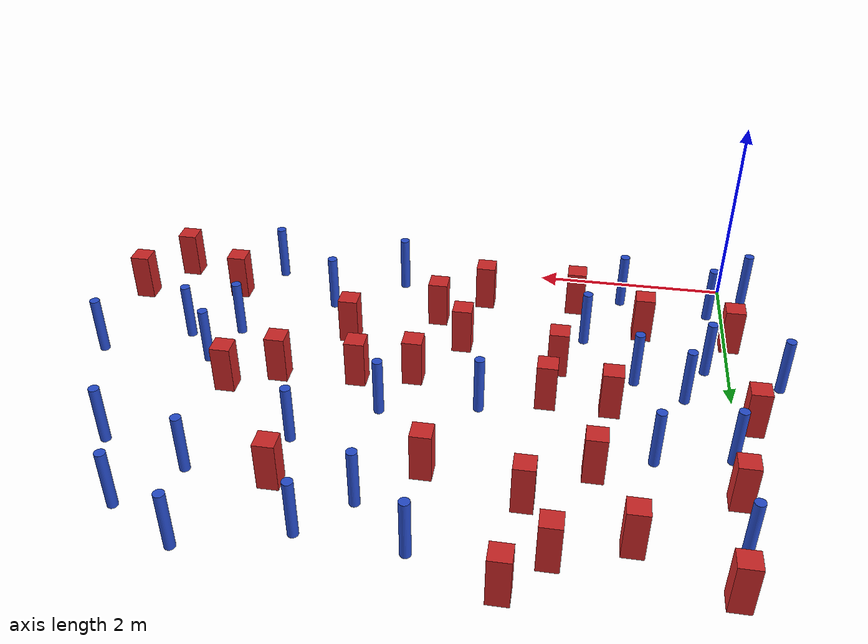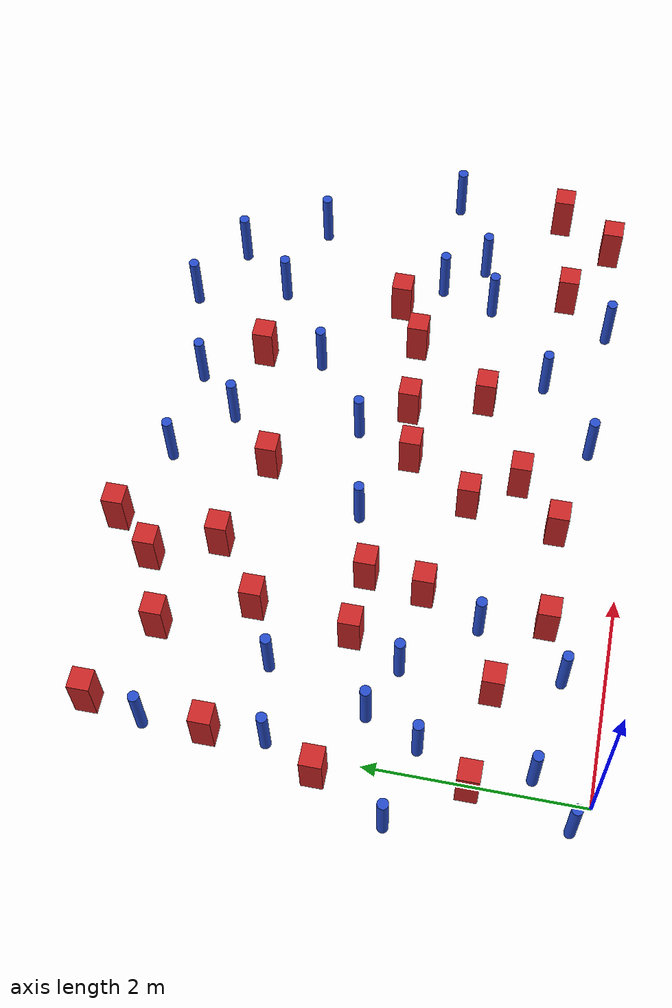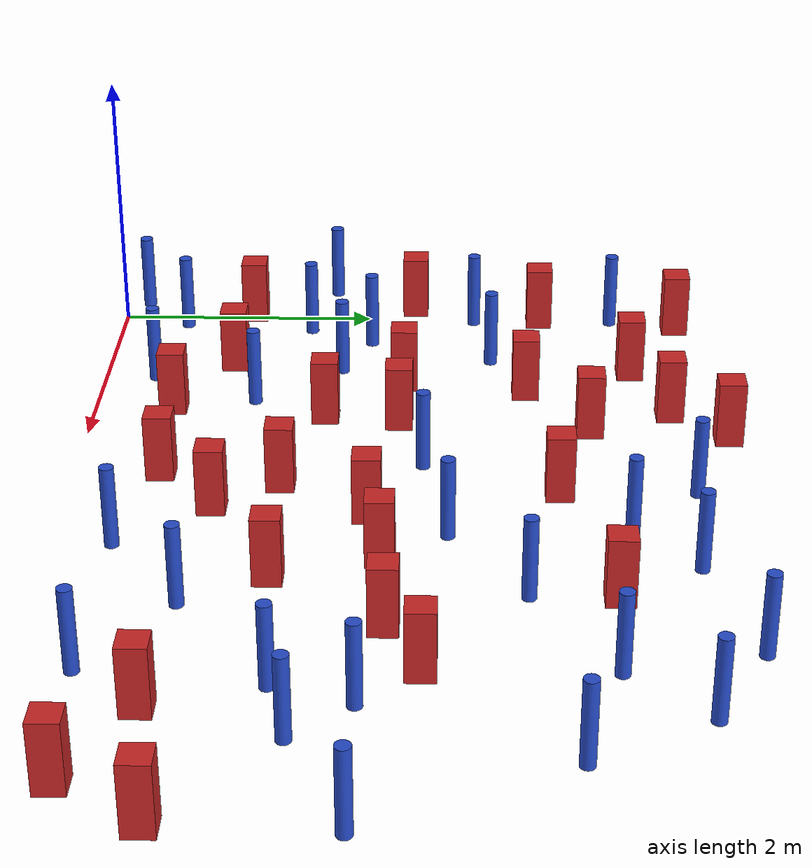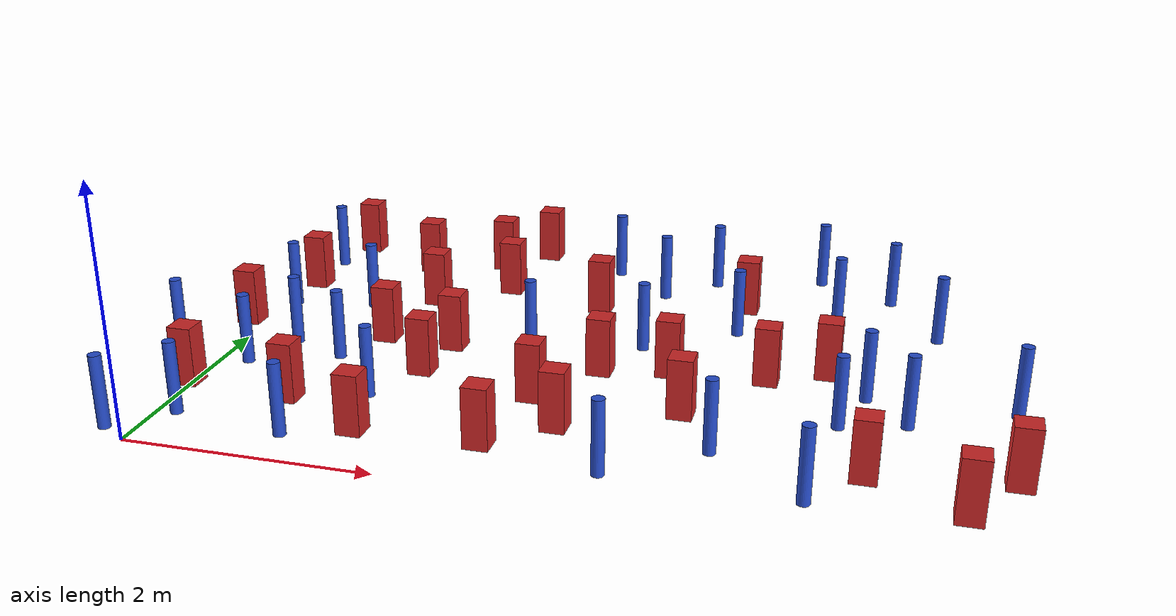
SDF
<sdf version="1.6">
 <model name="dense_62">
  <model name="pole_obstacle0">
   <static>true</static>
   <pose>-0.240299481818 0.152974153635 -9.47619616065e-06 5.49618799737e-07 2.36310414057e-07 -1.55090534801e-07</pose>
   <link name="link">
    <pose>0 0 0.3 0 -0 0</pose>
    <inertial>
     <mass>1</mass>
     <inertia><ixx>0.145833</ixx><ixy>0</ixy><ixz>0</ixz><iyy>0.145833</iyy><iyz>0</iyz><izz>0.125</izz></inertia>
    </inertial>
    <collision name="collision">
     <geometry><cylinder><radius>0.05</radius><length>.6</length></cylinder></geometry>
    </collision>
    <visual name="visual">
     <geometry><cylinder><radius>0.05</radius><length>.6</length></cylinder></geometry>
     <material>
      <script><name>Gazebo/Blue</name><uri>file://media/materials/scripts/gazebo.material</uri></script>
     </material>
    </visual>
   </link>
  </model>
  <model name="pole_obstacle2">
   <static>true</static>
   <pose>-0.487812181251 1.71194919246 -9.47619616065e-06 5.49618799738e-07 2.36310414059e-07 -1.55090534802e-07</pose>
   <link name="link">
    <pose>0 0 0.3 0 -0 0</pose>
    <inertial>
     <mass>1</mass>
     <inertia><ixx>0.145833</ixx><ixy>0</ixy><ixz>0</ixz><iyy>0.145833</iyy><iyz>0</iyz><izz>0.125</izz></inertia>
    </inertial>
    <collision name="collision">
     <geometry><cylinder><radius>0.05</radius><length>.6</length></cylinder></geometry>
    </collision>
    <visual name="visual">
     <geometry><cylinder><radius>0.05</radius><length>.6</length></cylinder></geometry>
     <material>
      <script><name>Gazebo/Blue</name><uri>file://media/materials/scripts/gazebo.material</uri></script>
     </material>
    </visual>
   </link>
  </model>
  <model name="square_post_obstacle4">
   <static>true</static>
   <pose>3.69280537728 2.22293517333 -6.11067671241e-07 -5.50515727128e-06 -8.79689657224e-07 2.37013304536e-05</pose>
   <link name="link">
    <pose>0 0 0.25 0 -0 0</pose>
    <inertial>
     <mass>100</mass>
     <inertia>
      <ixx>0.166667</ixx>
      <ixy>0</ixy>
      <ixz>0</ixz>
      <iyy>0.166667</iyy>
      <iyz>0</iyz>
      <izz>0.166667</izz>
     </inertia>
    </inertial>
    <collision name="collision"><geometry><box><size>.2 .2 .5</size></box></geometry></collision>
    <visual name="visual">
     <geometry><box><size>.2 .2 .5</size></box></geometry>
     <material>
      <script><name>Gazebo/Red</name><uri>file://media/materials/scripts/gazebo.material</uri></script>
     </material>
    </visual>
   </link>
  </model>
  <model name="pole_obstacle8">
   <static>true</static>
   <pose>0.767769919635 2.98122470118 -9.47619616065e-06 5.49618799737e-07 2.36310414066e-07 -1.55090534797e-07</pose>
   <link name="link">
    <pose>0 0 0.3 0 -0 0</pose>
    <inertial>
     <mass>1</mass>
     <inertia><ixx>0.145833</ixx><ixy>0</ixy><ixz>0</ixz><iyy>0.145833</iyy><iyz>0</iyz><izz>0.125</izz></inertia>
    </inertial>
    <collision name="collision">
     <geometry><cylinder><radius>0.05</radius><length>.6</length></cylinder></geometry>
    </collision>
    <visual name="visual">
     <geometry><cylinder><radius>0.05</radius><length>.6</length></cylinder></geometry>
     <material>
      <script><name>Gazebo/Blue</name><uri>file://media/materials/scripts/gazebo.material</uri></script>
     </material>
    </visual>
   </link>
  </model>
  <model name="square_post_obstacle7">
   <static>true</static>
   <pose>3.92760608452 1.5035485975 -6.11067671241e-07 -5.50515727128e-06 -8.79689657224e-07 2.37013304536e-05</pose>
   <link name="link">
    <pose>0 0 0.25 0 -0 0</pose>
    <inertial>
     <mass>100</mass>
     <inertia>
      <ixx>0.166667</ixx>
      <ixy>0</ixy>
      <ixz>0</ixz>
      <iyy>0.166667</iyy>
      <iyz>0</iyz>
      <izz>0.166667</izz>
     </inertia>
    </inertial>
    <collision name="collision"><geometry><box><size>.2 .2 .5</size></box></geometry></collision>
    <visual name="visual">
     <geometry><box><size>.2 .2 .5</size></box></geometry>
     <material>
      <script><name>Gazebo/Red</name><uri>file://media/materials/scripts/gazebo.material</uri></script>
     </material>
    </visual>
   </link>
  </model>
  <model name="pole_obstacle19">
   <static>true</static>
   <pose>4.24416532773 0.94798718305 -9.47619616065e-06 5.49618799737e-07 2.36310414061e-07 -1.550905348e-07</pose>
   <link name="link">
    <pose>0 0 0.3 0 -0 0</pose>
    <inertial>
     <mass>1</mass>
     <inertia><ixx>0.145833</ixx><ixy>0</ixy><ixz>0</ixz><iyy>0.145833</iyy><iyz>0</iyz><izz>0.125</izz></inertia>
    </inertial>
    <collision name="collision">
     <geometry><cylinder><radius>0.05</radius><length>.6</length></cylinder></geometry>
    </collision>
    <visual name="visual">
     <geometry><cylinder><radius>0.05</radius><length>.6</length></cylinder></geometry>
     <material>
      <script><name>Gazebo/Blue</name><uri>file://media/materials/scripts/gazebo.material</uri></script>
     </material>
    </visual>
   </link>
  </model>
  <model name="square_post_obstacle28">
   <static>true</static>
   <pose>1.8963243854 3.69895529939 -6.11067671241e-07 -5.50515727128e-06 -8.79689657224e-07 2.37013304536e-05</pose>
   <link name="link">
    <pose>0 0 0.25 0 -0 0</pose>
    <inertial>
     <mass>100</mass>
     <inertia>
      <ixx>0.166667</ixx>
      <ixy>0</ixy>
      <ixz>0</ixz>
      <iyy>0.166667</iyy>
      <iyz>0</iyz>
      <izz>0.166667</izz>
     </inertia>
    </inertial>
    <collision name="collision"><geometry><box><size>.2 .2 .5</size></box></geometry></collision>
    <visual name="visual">
     <geometry><box><size>.2 .2 .5</size></box></geometry>
     <material>
      <script><name>Gazebo/Red</name><uri>file://media/materials/scripts/gazebo.material</uri></script>
     </material>
    </visual>
   </link>
  </model>
  <model name="pole_obstacle33">
   <static>true</static>
   <pose>6.4372163077 2.13845733889 -9.47619616065e-06 5.49618799738e-07 2.36310414051e-07 -1.55090534805e-07</pose>
   <link name="link">
    <pose>0 0 0.3 0 -0 0</pose>
    <inertial>
     <mass>1</mass>
     <inertia><ixx>0.145833</ixx><ixy>0</ixy><ixz>0</ixz><iyy>0.145833</iyy><iyz>0</iyz><izz>0.125</izz></inertia>
    </inertial>
    <collision name="collision">
     <geometry><cylinder><radius>0.05</radius><length>.6</length></cylinder></geometry>
    </collision>
    <visual name="visual">
     <geometry><cylinder><radius>0.05</radius><length>.6</length></cylinder></geometry>
     <material>
      <script><name>Gazebo/Blue</name><uri>file://media/materials/scripts/gazebo.material</uri></script>
     </material>
    </visual>
   </link>
  </model>
  <model name="square_post_obstacle30">
   <static>true</static>
   <pose>-0.0360969323806 1.05991731777 -6.11067671241e-07 -5.50515727128e-06 -8.79689657224e-07 2.37013304536e-05</pose>
   <link name="link">
    <pose>0 0 0.25 0 -0 0</pose>
    <inertial>
     <mass>100</mass>
     <inertia>
      <ixx>0.166667</ixx>
      <ixy>0</ixy>
      <ixz>0</ixz>
      <iyy>0.166667</iyy>
      <iyz>0</iyz>
      <izz>0.166667</izz>
     </inertia>
    </inertial>
    <collision name="collision"><geometry><box><size>.2 .2 .5</size></box></geometry></collision>
    <visual name="visual">
     <geometry><box><size>.2 .2 .5</size></box></geometry>
     <material>
      <script><name>Gazebo/Red</name><uri>file://media/materials/scripts/gazebo.material</uri></script>
     </material>
    </visual>
   </link>
  </model>
  <model name="pole_obstacle41">
   <static>true</static>
   <pose>4.71669889044 4.6376784754 -9.47619616065e-06 5.49618799737e-07 2.36310414037e-07 -1.55090534814e-07</pose>
   <link name="link">
    <pose>0 0 0.3 0 -0 0</pose>
    <inertial>
     <mass>1</mass>
     <inertia><ixx>0.145833</ixx><ixy>0</ixy><ixz>0</ixz><iyy>0.145833</iyy><iyz>0</iyz><izz>0.125</izz></inertia>
    </inertial>
    <collision name="collision">
     <geometry><cylinder><radius>0.05</radius><length>.6</length></cylinder></geometry>
    </collision>
    <visual name="visual">
     <geometry><cylinder><radius>0.05</radius><length>.6</length></cylinder></geometry>
     <material>
      <script><name>Gazebo/Blue</name><uri>file://media/materials/scripts/gazebo.material</uri></script>
     </material>
    </visual>
   </link>
  </model>
  <model name="square_post_obstacle34">
   <static>true</static>
   <pose>4.4838422357 2.2754608265 -6.11067671241e-07 -5.50515727128e-06 -8.79689657224e-07 2.37013304536e-05</pose>
   <link name="link">
    <pose>0 0 0.25 0 -0 0</pose>
    <inertial>
     <mass>100</mass>
     <inertia>
      <ixx>0.166667</ixx>
      <ixy>0</ixy>
      <ixz>0</ixz>
      <iyy>0.166667</iyy>
      <iyz>0</iyz>
      <izz>0.166667</izz>
     </inertia>
    </inertial>
    <collision name="collision"><geometry><box><size>.2 .2 .5</size></box></geometry></collision>
    <visual name="visual">
     <geometry><box><size>.2 .2 .5</size></box></geometry>
     <material>
      <script><name>Gazebo/Red</name><uri>file://media/materials/scripts/gazebo.material</uri></script>
     </material>
    </visual>
   </link>
  </model>
  <model name="pole_obstacle54">
   <static>true</static>
   <pose>5.38299766523 4.27145445951 -9.47619616065e-06 5.49618799737e-07 2.36310414037e-07 -1.55090534814e-07</pose>
   <link name="link">
    <pose>0 0 0.3 0 -0 0</pose>
    <inertial>
     <mass>1</mass>
     <inertia><ixx>0.145833</ixx><ixy>0</ixy><ixz>0</ixz><iyy>0.145833</iyy><iyz>0</iyz><izz>0.125</izz></inertia>
    </inertial>
    <collision name="collision">
     <geometry><cylinder><radius>0.05</radius><length>.6</length></cylinder></geometry>
    </collision>
    <visual name="visual">
     <geometry><cylinder><radius>0.05</radius><length>.6</length></cylinder></geometry>
     <material>
      <script><name>Gazebo/Blue</name><uri>file://media/materials/scripts/gazebo.material</uri></script>
     </material>
    </visual>
   </link>
  </model>
  <model name="square_post_obstacle42">
   <static>true</static>
   <pose>5.35175985893 0.859702242801 -6.11067671241e-07 -5.50515727128e-06 -8.79689657224e-07 2.37013304536e-05</pose>
   <link name="link">
    <pose>0 0 0.25 0 -0 0</pose>
    <inertial>
     <mass>100</mass>
     <inertia>
      <ixx>0.166667</ixx>
      <ixy>0</ixy>
      <ixz>0</ixz>
      <iyy>0.166667</iyy>
      <iyz>0</iyz>
      <izz>0.166667</izz>
     </inertia>
    </inertial>
    <collision name="collision"><geometry><box><size>.2 .2 .5</size></box></geometry></collision>
    <visual name="visual">
     <geometry><box><size>.2 .2 .5</size></box></geometry>
     <material>
      <script><name>Gazebo/Red</name><uri>file://media/materials/scripts/gazebo.material</uri></script>
     </material>
    </visual>
   </link>
  </model>
  <model name="square_post_obstacle44">
   <static>true</static>
   <pose>2.81730123864 3.44265855016 -6.11067671241e-07 -5.50515727128e-06 -8.79689657224e-07 2.37013304536e-05</pose>
   <link name="link">
    <pose>0 0 0.25 0 -0 0</pose>
    <inertial>
     <mass>100</mass>
     <inertia>
      <ixx>0.166667</ixx>
      <ixy>0</ixy>
      <ixz>0</ixz>
      <iyy>0.166667</iyy>
      <iyz>0</iyz>
      <izz>0.166667</izz>
     </inertia>
    </inertial>
    <collision name="collision"><geometry><box><size>.2 .2 .5</size></box></geometry></collision>
    <visual name="visual">
     <geometry><box><size>.2 .2 .5</size></box></geometry>
     <material>
      <script><name>Gazebo/Red</name><uri>file://media/materials/scripts/gazebo.material</uri></script>
     </material>
    </visual>
   </link>
  </model>
  <model name="square_post_obstacle45">
   <static>true</static>
   <pose>1.99190865364 4.70756909443 -6.11067671241e-07 -5.50515727128e-06 -8.79689657224e-07 2.37013304536e-05</pose>
   <link name="link">
    <pose>0 0 0.25 0 -0 0</pose>
    <inertial>
     <mass>100</mass>
     <inertia>
      <ixx>0.166667</ixx>
      <ixy>0</ixy>
      <ixz>0</ixz>
      <iyy>0.166667</iyy>
      <iyz>0</iyz>
      <izz>0.166667</izz>
     </inertia>
    </inertial>
    <collision name="collision"><geometry><box><size>.2 .2 .5</size></box></geometry></collision>
    <visual name="visual">
     <geometry><box><size>.2 .2 .5</size></box></geometry>
     <material>
      <script><name>Gazebo/Red</name><uri>file://media/materials/scripts/gazebo.material</uri></script>
     </material>
    </visual>
   </link>
  </model>
  <model name="pole_obstacle62">
   <static>true</static>
   <pose>3.32741732016 3.91408078744 -9.47619616065e-06 5.49618799737e-07 2.36310414051e-07 -1.55090534807e-07</pose>
   <link name="link">
    <pose>0 0 0.3 0 -0 0</pose>
    <inertial>
     <mass>1</mass>
     <inertia><ixx>0.145833</ixx><ixy>0</ixy><ixz>0</ixz><iyy>0.145833</iyy><iyz>0</iyz><izz>0.125</izz></inertia>
    </inertial>
    <collision name="collision">
     <geometry><cylinder><radius>0.05</radius><length>.6</length></cylinder></geometry>
    </collision>
    <visual name="visual">
     <geometry><cylinder><radius>0.05</radius><length>.6</length></cylinder></geometry>
     <material>
      <script><name>Gazebo/Blue</name><uri>file://media/materials/scripts/gazebo.material</uri></script>
     </material>
    </visual>
   </link>
  </model>
  <model name="square_post_obstacle56">
   <static>true</static>
   <pose>3.05071177633 1.03974126625 -6.11067671241e-07 -5.50515727128e-06 -8.79689657224e-07 2.37013304536e-05</pose>
   <link name="link">
    <pose>0 0 0.25 0 -0 0</pose>
    <inertial>
     <mass>100</mass>
     <inertia>
      <ixx>0.166667</ixx>
      <ixy>0</ixy>
      <ixz>0</ixz>
      <iyy>0.166667</iyy>
      <iyz>0</iyz>
      <izz>0.166667</izz>
     </inertia>
    </inertial>
    <collision name="collision"><geometry><box><size>.2 .2 .5</size></box></geometry></collision>
    <visual name="visual">
     <geometry><box><size>.2 .2 .5</size></box></geometry>
     <material>
      <script><name>Gazebo/Red</name><uri>file://media/materials/scripts/gazebo.material</uri></script>
     </material>
    </visual>
   </link>
  </model>
  <model name="pole_obstacle71">
   <static>true</static>
   <pose>4.11179403503 3.19697628768 -9.47619616065e-06 5.49618799738e-07 2.36310414051e-07 -1.55090534805e-07</pose>
   <link name="link">
    <pose>0 0 0.3 0 -0 0</pose>
    <inertial>
     <mass>1</mass>
     <inertia><ixx>0.145833</ixx><ixy>0</ixy><ixz>0</ixz><iyy>0.145833</iyy><iyz>0</iyz><izz>0.125</izz></inertia>
    </inertial>
    <collision name="collision">
     <geometry><cylinder><radius>0.05</radius><length>.6</length></cylinder></geometry>
    </collision>
    <visual name="visual">
     <geometry><cylinder><radius>0.05</radius><length>.6</length></cylinder></geometry>
     <material>
      <script><name>Gazebo/Blue</name><uri>file://media/materials/scripts/gazebo.material</uri></script>
     </material>
    </visual>
   </link>
  </model>
  <model name="square_post_obstacle67">
   <static>true</static>
   <pose>6.40763302864 1.03324362311 -6.11067671241e-07 -5.50515727128e-06 -8.79689657224e-07 2.37013304536e-05</pose>
   <link name="link">
    <pose>0 0 0.25 0 -0 0</pose>
    <inertial>
     <mass>100</mass>
     <inertia>
      <ixx>0.166667</ixx>
      <ixy>0</ixy>
      <ixz>0</ixz>
      <iyy>0.166667</iyy>
      <iyz>0</iyz>
      <izz>0.166667</izz>
     </inertia>
    </inertial>
    <collision name="collision"><geometry><box><size>.2 .2 .5</size></box></geometry></collision>
    <visual name="visual">
     <geometry><box><size>.2 .2 .5</size></box></geometry>
     <material>
      <script><name>Gazebo/Red</name><uri>file://media/materials/scripts/gazebo.material</uri></script>
     </material>
    </visual>
   </link>
  </model>
  <model name="pole_obstacle86">
   <static>true</static>
   <pose>5.81162590875 3.48142350158 -9.47619616065e-06 5.49618799738e-07 2.36310414051e-07 -1.55090534805e-07</pose>
   <link name="link">
    <pose>0 0 0.3 0 -0 0</pose>
    <inertial>
     <mass>1</mass>
     <inertia><ixx>0.145833</ixx><ixy>0</ixy><ixz>0</ixz><iyy>0.145833</iyy><iyz>0</iyz><izz>0.125</izz></inertia>
    </inertial>
    <collision name="collision">
     <geometry><cylinder><radius>0.05</radius><length>.6</length></cylinder></geometry>
    </collision>
    <visual name="visual">
     <geometry><cylinder><radius>0.05</radius><length>.6</length></cylinder></geometry>
     <material>
      <script><name>Gazebo/Blue</name><uri>file://media/materials/scripts/gazebo.material</uri></script>
     </material>
    </visual>
   </link>
  </model>
  <model name="pole_obstacle87">
   <static>true</static>
   <pose>4.98019573924 0.405692615105 -9.47619616065e-06 5.49618799737e-07 2.36310414057e-07 -1.55090534802e-07</pose>
   <link name="link">
    <pose>0 0 0.3 0 -0 0</pose>
    <inertial>
     <mass>1</mass>
     <inertia><ixx>0.145833</ixx><ixy>0</ixy><ixz>0</ixz><iyy>0.145833</iyy><iyz>0</iyz><izz>0.125</izz></inertia>
    </inertial>
    <collision name="collision">
     <geometry><cylinder><radius>0.05</radius><length>.6</length></cylinder></geometry>
    </collision>
    <visual name="visual">
     <geometry><cylinder><radius>0.05</radius><length>.6</length></cylinder></geometry>
     <material>
      <script><name>Gazebo/Blue</name><uri>file://media/materials/scripts/gazebo.material</uri></script>
     </material>
    </visual>
   </link>
  </model>
  <model name="pole_obstacle88">
   <static>true</static>
   <pose>0.0551312334051 2.8501928194 -9.4761961606e-06 5.49618799729e-07 2.36310413998e-07 -1.55090534825e-07</pose>
   <link name="link">
    <pose>0 0 0.3 0 -0 0</pose>
    <inertial>
     <mass>1</mass>
     <inertia><ixx>0.145833</ixx><ixy>0</ixy><ixz>0</ixz><iyy>0.145833</iyy><iyz>0</iyz><izz>0.125</izz></inertia>
    </inertial>
    <collision name="collision">
     <geometry><cylinder><radius>0.05</radius><length>.6</length></cylinder></geometry>
    </collision>
    <visual name="visual">
     <geometry><cylinder><radius>0.05</radius><length>.6</length></cylinder></geometry>
     <material>
      <script><name>Gazebo/Blue</name><uri>file://media/materials/scripts/gazebo.material</uri></script>
     </material>
    </visual>
   </link>
  </model>
  <model name="square_post_obstacle81">
   <static>true</static>
   <pose>1.180690042 2.31409241837 -6.11067671241e-07 -5.50515727128e-06 -8.79689657224e-07 2.37013304536e-05</pose>
   <link name="link">
    <pose>0 0 0.25 0 -0 0</pose>
    <inertial>
     <mass>100</mass>
     <inertia>
      <ixx>0.166667</ixx>
      <ixy>0</ixy>
      <ixz>0</ixz>
      <iyy>0.166667</iyy>
      <iyz>0</iyz>
      <izz>0.166667</izz>
     </inertia>
    </inertial>
    <collision name="collision"><geometry><box><size>.2 .2 .5</size></box></geometry></collision>
    <visual name="visual">
     <geometry><box><size>.2 .2 .5</size></box></geometry>
     <material>
      <script><name>Gazebo/Red</name><uri>file://media/materials/scripts/gazebo.material</uri></script>
     </material>
    </visual>
   </link>
  </model>
  <model name="pole_obstacle93">
   <static>true</static>
   <pose>3.53884156486 0.422860158452 -9.47619616065e-06 5.49618799738e-07 2.36310414074e-07 -1.55090534794e-07</pose>
   <link name="link">
    <pose>0 0 0.3 0 -0 0</pose>
    <inertial>
     <mass>1</mass>
     <inertia><ixx>0.145833</ixx><ixy>0</ixy><ixz>0</ixz><iyy>0.145833</iyy><iyz>0</iyz><izz>0.125</izz></inertia>
    </inertial>
    <collision name="collision">
     <geometry><cylinder><radius>0.05</radius><length>.6</length></cylinder></geometry>
    </collision>
    <visual name="visual">
     <geometry><cylinder><radius>0.05</radius><length>.6</length></cylinder></geometry>
     <material>
      <script><name>Gazebo/Blue</name><uri>file://media/materials/scripts/gazebo.material</uri></script>
     </material>
    </visual>
   </link>
  </model>
  <model name="pole_obstacle96">
   <static>true</static>
   <pose>5.11314997426 1.60261455648 -9.47619616065e-06 5.49618799738e-07 2.36310414071e-07 -1.55090534796e-07</pose>
   <link name="link">
    <pose>0 0 0.3 0 -0 0</pose>
    <inertial>
     <mass>1</mass>
     <inertia><ixx>0.145833</ixx><ixy>0</ixy><ixz>0</ixz><iyy>0.145833</iyy><iyz>0</iyz><izz>0.125</izz></inertia>
    </inertial>
    <collision name="collision">
     <geometry><cylinder><radius>0.05</radius><length>.6</length></cylinder></geometry>
    </collision>
    <visual name="visual">
     <geometry><cylinder><radius>0.05</radius><length>.6</length></cylinder></geometry>
     <material>
      <script><name>Gazebo/Blue</name><uri>file://media/materials/scripts/gazebo.material</uri></script>
     </material>
    </visual>
   </link>
  </model>
  <model name="pole_obstacle101">
   <static>true</static>
   <pose>0.0374332358474 3.95878103369 -9.47619616065e-06 5.49618799737e-07 2.36310414066e-07 -1.55090534796e-07</pose>
   <link name="link">
    <pose>0 0 0.3 0 -0 0</pose>
    <inertial>
     <mass>1</mass>
     <inertia><ixx>0.145833</ixx><ixy>0</ixy><ixz>0</ixz><iyy>0.145833</iyy><iyz>0</iyz><izz>0.125</izz></inertia>
    </inertial>
    <collision name="collision">
     <geometry><cylinder><radius>0.05</radius><length>.6</length></cylinder></geometry>
    </collision>
    <visual name="visual">
     <geometry><cylinder><radius>0.05</radius><length>.6</length></cylinder></geometry>
     <material>
      <script><name>Gazebo/Blue</name><uri>file://media/materials/scripts/gazebo.material</uri></script>
     </material>
    </visual>
   </link>
  </model>
  <model name="square_post_obstacle105">
   <static>true</static>
   <pose>1.30832829084 3.23836102406 -6.11067671241e-07 -5.50515727128e-06 -8.79689657224e-07 2.37013304536e-05</pose>
   <link name="link">
    <pose>0 0 0.25 0 -0 0</pose>
    <inertial>
     <mass>100</mass>
     <inertia>
      <ixx>0.166667</ixx>
      <ixy>0</ixy>
      <ixz>0</ixz>
      <iyy>0.166667</iyy>
      <iyz>0</iyz>
      <izz>0.166667</izz>
     </inertia>
    </inertial>
    <collision name="collision"><geometry><box><size>.2 .2 .5</size></box></geometry></collision>
    <visual name="visual">
     <geometry><box><size>.2 .2 .5</size></box></geometry>
     <material>
      <script><name>Gazebo/Red</name><uri>file://media/materials/scripts/gazebo.material</uri></script>
     </material>
    </visual>
   </link>
  </model>
  <model name="pole_obstacle111">
   <static>true</static>
   <pose>3.37869174754 2.66776359021 -9.47619616065e-06 5.49618799737e-07 2.36310414051e-07 -1.55090534807e-07</pose>
   <link name="link">
    <pose>0 0 0.3 0 -0 0</pose>
    <inertial>
     <mass>1</mass>
     <inertia><ixx>0.145833</ixx><ixy>0</ixy><ixz>0</ixz><iyy>0.145833</iyy><iyz>0</iyz><izz>0.125</izz></inertia>
    </inertial>
    <collision name="collision">
     <geometry><cylinder><radius>0.05</radius><length>.6</length></cylinder></geometry>
    </collision>
    <visual name="visual">
     <geometry><cylinder><radius>0.05</radius><length>.6</length></cylinder></geometry>
     <material>
      <script><name>Gazebo/Blue</name><uri>file://media/materials/scripts/gazebo.material</uri></script>
     </material>
    </visual>
   </link>
  </model>
  <model name="square_post_obstacle109">
   <static>true</static>
   <pose>0.871969190971 0.984973243615 -6.11067671241e-07 -5.50515727128e-06 -8.79689657224e-07 2.37013304536e-05</pose>
   <link name="link">
    <pose>0 0 0.25 0 -0 0</pose>
    <inertial>
     <mass>100</mass>
     <inertia>
      <ixx>0.166667</ixx>
      <ixy>0</ixy>
      <ixz>0</ixz>
      <iyy>0.166667</iyy>
      <iyz>0</iyz>
      <izz>0.166667</izz>
     </inertia>
    </inertial>
    <collision name="collision"><geometry><box><size>.2 .2 .5</size></box></geometry></collision>
    <visual name="visual">
     <geometry><box><size>.2 .2 .5</size></box></geometry>
     <material>
      <script><name>Gazebo/Red</name><uri>file://media/materials/scripts/gazebo.material</uri></script>
     </material>
    </visual>
   </link>
  </model>
  <model name="square_post_obstacle115">
   <static>true</static>
   <pose>1.63409261064 4.30810418463 -6.11067671241e-07 -5.50515727128e-06 -8.79689657224e-07 2.37013304536e-05</pose>
   <link name="link">
    <pose>0 0 0.25 0 -0 0</pose>
    <inertial>
     <mass>100</mass>
     <inertia>
      <ixx>0.166667</ixx>
      <ixy>0</ixy>
      <ixz>0</ixz>
      <iyy>0.166667</iyy>
      <iyz>0</iyz>
      <izz>0.166667</izz>
     </inertia>
    </inertial>
    <collision name="collision"><geometry><box><size>.2 .2 .5</size></box></geometry></collision>
    <visual name="visual">
     <geometry><box><size>.2 .2 .5</size></box></geometry>
     <material>
      <script><name>Gazebo/Red</name><uri>file://media/materials/scripts/gazebo.material</uri></script>
     </material>
    </visual>
   </link>
  </model>
  <model name="pole_obstacle116">
   <static>true</static>
   <pose>5.622537648 1.7429333963 -9.47619616065e-06 5.49618799738e-07 2.36310414071e-07 -1.55090534796e-07</pose>
   <link name="link">
    <pose>0 0 0.3 0 -0 0</pose>
    <inertial>
     <mass>1</mass>
     <inertia><ixx>0.145833</ixx><ixy>0</ixy><ixz>0</ixz><iyy>0.145833</iyy><iyz>0</iyz><izz>0.125</izz></inertia>
    </inertial>
    <collision name="collision">
     <geometry><cylinder><radius>0.05</radius><length>.6</length></cylinder></geometry>
    </collision>
    <visual name="visual">
     <geometry><cylinder><radius>0.05</radius><length>.6</length></cylinder></geometry>
     <material>
      <script><name>Gazebo/Blue</name><uri>file://media/materials/scripts/gazebo.material</uri></script>
     </material>
    </visual>
   </link>
  </model>
  <model name="pole_obstacle118">
   <static>true</static>
   <pose>0.236821451954 1.54279347426 -9.47619616065e-06 5.49618799737e-07 2.36310414054e-07 -1.55090534804e-07</pose>
   <link name="link">
    <pose>0 0 0.3 0 -0 0</pose>
    <inertial>
     <mass>1</mass>
     <inertia><ixx>0.145833</ixx><ixy>0</ixy><ixz>0</ixz><iyy>0.145833</iyy><iyz>0</iyz><izz>0.125</izz></inertia>
    </inertial>
    <collision name="collision">
     <geometry><cylinder><radius>0.05</radius><length>.6</length></cylinder></geometry>
    </collision>
    <visual name="visual">
     <geometry><cylinder><radius>0.05</radius><length>.6</length></cylinder></geometry>
     <material>
      <script><name>Gazebo/Blue</name><uri>file://media/materials/scripts/gazebo.material</uri></script>
     </material>
    </visual>
   </link>
  </model>
  <model name="square_post_obstacle120">
   <static>true</static>
   <pose>1.59671026568 0.59072320867 -6.11067671241e-07 -5.50515727128e-06 -8.79689657224e-07 2.37013304536e-05</pose>
   <link name="link">
    <pose>0 0 0.25 0 -0 0</pose>
    <inertial>
     <mass>100</mass>
     <inertia>
      <ixx>0.166667</ixx>
      <ixy>0</ixy>
      <ixz>0</ixz>
      <iyy>0.166667</iyy>
      <iyz>0</iyz>
      <izz>0.166667</izz>
     </inertia>
    </inertial>
    <collision name="collision"><geometry><box><size>.2 .2 .5</size></box></geometry></collision>
    <visual name="visual">
     <geometry><box><size>.2 .2 .5</size></box></geometry>
     <material>
      <script><name>Gazebo/Red</name><uri>file://media/materials/scripts/gazebo.material</uri></script>
     </material>
    </visual>
   </link>
  </model>
  <model name="pole_obstacle120">
   <static>true</static>
   <pose>1.09691074855 0.386702304819 -9.47619616065e-06 5.49618799737e-07 2.36310414064e-07 -1.55090534799e-07</pose>
   <link name="link">
    <pose>0 0 0.3 0 -0 0</pose>
    <inertial>
     <mass>1</mass>
     <inertia><ixx>0.145833</ixx><ixy>0</ixy><ixz>0</ixz><iyy>0.145833</iyy><iyz>0</iyz><izz>0.125</izz></inertia>
    </inertial>
    <collision name="collision">
     <geometry><cylinder><radius>0.05</radius><length>.6</length></cylinder></geometry>
    </collision>
    <visual name="visual">
     <geometry><cylinder><radius>0.05</radius><length>.6</length></cylinder></geometry>
     <material>
      <script><name>Gazebo/Blue</name><uri>file://media/materials/scripts/gazebo.material</uri></script>
     </material>
    </visual>
   </link>
  </model>
  <model name="pole_obstacle122">
   <static>true</static>
   <pose>0.943366641053 1.8291367113 -9.47619616065e-06 5.49618799738e-07 2.36310414061e-07 -1.55090534801e-07</pose>
   <link name="link">
    <pose>0 0 0.3 0 -0 0</pose>
    <inertial>
     <mass>1</mass>
     <inertia><ixx>0.145833</ixx><ixy>0</ixy><ixz>0</ixz><iyy>0.145833</iyy><iyz>0</iyz><izz>0.125</izz></inertia>
    </inertial>
    <collision name="collision">
     <geometry><cylinder><radius>0.05</radius><length>.6</length></cylinder></geometry>
    </collision>
    <visual name="visual">
     <geometry><cylinder><radius>0.05</radius><length>.6</length></cylinder></geometry>
     <material>
      <script><name>Gazebo/Blue</name><uri>file://media/materials/scripts/gazebo.material</uri></script>
     </material>
    </visual>
   </link>
  </model>
  <model name="pole_obstacle124">
   <static>true</static>
   <pose>2.43304529755 2.48319438129 -9.47619616065e-06 5.49618799737e-07 2.36310414051e-07 -1.55090534807e-07</pose>
   <link name="link">
    <pose>0 0 0.3 0 -0 0</pose>
    <inertial>
     <mass>1</mass>
     <inertia><ixx>0.145833</ixx><ixy>0</ixy><ixz>0</ixz><iyy>0.145833</iyy><iyz>0</iyz><izz>0.125</izz></inertia>
    </inertial>
    <collision name="collision">
     <geometry><cylinder><radius>0.05</radius><length>.6</length></cylinder></geometry>
    </collision>
    <visual name="visual">
     <geometry><cylinder><radius>0.05</radius><length>.6</length></cylinder></geometry>
     <material>
      <script><name>Gazebo/Blue</name><uri>file://media/materials/scripts/gazebo.material</uri></script>
     </material>
    </visual>
   </link>
  </model>
  <model name="pole_obstacle148">
   <static>true</static>
   <pose>0.155302557805 0.52348102198 -9.47619616065e-06 5.49618799737e-07 2.36310414054e-07 -1.55090534803e-07</pose>
   <link name="link">
    <pose>0 0 0.3 0 -0 0</pose>
    <inertial>
     <mass>1</mass>
     <inertia><ixx>0.145833</ixx><ixy>0</ixy><ixz>0</ixz><iyy>0.145833</iyy><iyz>0</iyz><izz>0.125</izz></inertia>
    </inertial>
    <collision name="collision">
     <geometry><cylinder><radius>0.05</radius><length>.6</length></cylinder></geometry>
    </collision>
    <visual name="visual">
     <geometry><cylinder><radius>0.05</radius><length>.6</length></cylinder></geometry>
     <material>
      <script><name>Gazebo/Blue</name><uri>file://media/materials/scripts/gazebo.material</uri></script>
     </material>
    </visual>
   </link>
  </model>
  <model name="square_post_obstacle144">
   <static>true</static>
   <pose>2.58615659373 0.62790057353 -6.11067671241e-07 -5.50515727128e-06 -8.79689657224e-07 2.37013304536e-05</pose>
   <link name="link">
    <pose>0 0 0.25 0 -0 0</pose>
    <inertial>
     <mass>100</mass>
     <inertia>
      <ixx>0.166667</ixx>
      <ixy>0</ixy>
      <ixz>0</ixz>
      <iyy>0.166667</iyy>
      <iyz>0</iyz>
      <izz>0.166667</izz>
     </inertia>
    </inertial>
    <collision name="collision"><geometry><box><size>.2 .2 .5</size></box></geometry></collision>
    <visual name="visual">
     <geometry><box><size>.2 .2 .5</size></box></geometry>
     <material>
      <script><name>Gazebo/Red</name><uri>file://media/materials/scripts/gazebo.material</uri></script>
     </material>
    </visual>
   </link>
  </model>
  <model name="square_post_obstacle150">
   <static>true</static>
   <pose>4.95565555831 2.51809444745 -6.11067671241e-07 -5.50515727128e-06 -8.79689657224e-07 2.37013304536e-05</pose>
   <link name="link">
    <pose>0 0 0.25 0 -0 0</pose>
    <inertial>
     <mass>100</mass>
     <inertia>
      <ixx>0.166667</ixx>
      <ixy>0</ixy>
      <ixz>0</ixz>
      <iyy>0.166667</iyy>
      <iyz>0</iyz>
      <izz>0.166667</izz>
     </inertia>
    </inertial>
    <collision name="collision"><geometry><box><size>.2 .2 .5</size></box></geometry></collision>
    <visual name="visual">
     <geometry><box><size>.2 .2 .5</size></box></geometry>
     <material>
      <script><name>Gazebo/Red</name><uri>file://media/materials/scripts/gazebo.material</uri></script>
     </material>
    </visual>
   </link>
  </model>
  <model name="pole_obstacle155">
   <static>true</static>
   <pose>3.75396969724 4.34154133363 -9.47619616065e-06 5.49618799738e-07 2.3631041406e-07 -1.55090534801e-07</pose>
   <link name="link">
    <pose>0 0 0.3 0 -0 0</pose>
    <inertial>
     <mass>1</mass>
     <inertia><ixx>0.145833</ixx><ixy>0</ixy><ixz>0</ixz><iyy>0.145833</iyy><iyz>0</iyz><izz>0.125</izz></inertia>
    </inertial>
    <collision name="collision">
     <geometry><cylinder><radius>0.05</radius><length>.6</length></cylinder></geometry>
    </collision>
    <visual name="visual">
     <geometry><cylinder><radius>0.05</radius><length>.6</length></cylinder></geometry>
     <material>
      <script><name>Gazebo/Blue</name><uri>file://media/materials/scripts/gazebo.material</uri></script>
     </material>
    </visual>
   </link>
  </model>
  <model name="pole_obstacle156">
   <static>true</static>
   <pose>2.78645025342 4.40657249441 -9.47619616065e-06 5.49618799738e-07 2.3631041406e-07 -1.55090534801e-07</pose>
   <link name="link">
    <pose>0 0 0.3 0 -0 0</pose>
    <inertial>
     <mass>1</mass>
     <inertia><ixx>0.145833</ixx><ixy>0</ixy><ixz>0</ixz><iyy>0.145833</iyy><iyz>0</iyz><izz>0.125</izz></inertia>
    </inertial>
    <collision name="collision">
     <geometry><cylinder><radius>0.05</radius><length>.6</length></cylinder></geometry>
    </collision>
    <visual name="visual">
     <geometry><cylinder><radius>0.05</radius><length>.6</length></cylinder></geometry>
     <material>
      <script><name>Gazebo/Blue</name><uri>file://media/materials/scripts/gazebo.material</uri></script>
     </material>
    </visual>
   </link>
  </model>
  <model name="pole_obstacle163">
   <static>true</static>
   <pose>1.47115402093 1.19374681263 -9.47619616065e-06 5.49618799737e-07 2.36310414065e-07 -1.55090534798e-07</pose>
   <link name="link">
    <pose>0 0 0.3 0 -0 0</pose>
    <inertial>
     <mass>1</mass>
     <inertia><ixx>0.145833</ixx><ixy>0</ixy><ixz>0</ixz><iyy>0.145833</iyy><iyz>0</iyz><izz>0.125</izz></inertia>
    </inertial>
    <collision name="collision">
     <geometry><cylinder><radius>0.05</radius><length>.6</length></cylinder></geometry>
    </collision>
    <visual name="visual">
     <geometry><cylinder><radius>0.05</radius><length>.6</length></cylinder></geometry>
     <material>
      <script><name>Gazebo/Blue</name><uri>file://media/materials/scripts/gazebo.material</uri></script>
     </material>
    </visual>
   </link>
  </model>
  <model name="square_post_obstacle158">
   <static>true</static>
   <pose>0.0446554983195 3.37871515555 -6.11067671241e-07 -5.50515727128e-06 -8.79689657224e-07 2.37013304536e-05</pose>
   <link name="link">
    <pose>0 0 0.25 0 -0 0</pose>
    <inertial>
     <mass>100</mass>
     <inertia>
      <ixx>0.166667</ixx>
      <ixy>0</ixy>
      <ixz>0</ixz>
      <iyy>0.166667</iyy>
      <iyz>0</iyz>
      <izz>0.166667</izz>
     </inertia>
    </inertial>
    <collision name="collision"><geometry><box><size>.2 .2 .5</size></box></geometry></collision>
    <visual name="visual">
     <geometry><box><size>.2 .2 .5</size></box></geometry>
     <material>
      <script><name>Gazebo/Red</name><uri>file://media/materials/scripts/gazebo.material</uri></script>
     </material>
    </visual>
   </link>
  </model>
  <model name="pole_obstacle166">
   <static>true</static>
   <pose>5.28716187503 2.13662970273 -9.47619616065e-06 5.49618799738e-07 2.36310414051e-07 -1.55090534805e-07</pose>
   <link name="link">
    <pose>0 0 0.3 0 -0 0</pose>
    <inertial>
     <mass>1</mass>
     <inertia><ixx>0.145833</ixx><ixy>0</ixy><ixz>0</ixz><iyy>0.145833</iyy><iyz>0</iyz><izz>0.125</izz></inertia>
    </inertial>
    <collision name="collision">
     <geometry><cylinder><radius>0.05</radius><length>.6</length></cylinder></geometry>
    </collision>
    <visual name="visual">
     <geometry><cylinder><radius>0.05</radius><length>.6</length></cylinder></geometry>
     <material>
      <script><name>Gazebo/Blue</name><uri>file://media/materials/scripts/gazebo.material</uri></script>
     </material>
    </visual>
   </link>
  </model>
  <model name="pole_obstacle168">
   <static>true</static>
   <pose>4.93395761174 3.74017706079 -9.47619616065e-06 5.49618799738e-07 2.36310414051e-07 -1.55090534805e-07</pose>
   <link name="link">
    <pose>0 0 0.3 0 -0 0</pose>
    <inertial>
     <mass>1</mass>
     <inertia><ixx>0.145833</ixx><ixy>0</ixy><ixz>0</ixz><iyy>0.145833</iyy><iyz>0</iyz><izz>0.125</izz></inertia>
    </inertial>
    <collision name="collision">
     <geometry><cylinder><radius>0.05</radius><length>.6</length></cylinder></geometry>
    </collision>
    <visual name="visual">
     <geometry><cylinder><radius>0.05</radius><length>.6</length></cylinder></geometry>
     <material>
      <script><name>Gazebo/Blue</name><uri>file://media/materials/scripts/gazebo.material</uri></script>
     </material>
    </visual>
   </link>
  </model>
  <model name="square_post_obstacle168">
   <static>true</static>
   <pose>4.11889226667 3.7769641063 -6.11067671241e-07 -5.50515727128e-06 -8.79689657224e-07 2.37013304536e-05</pose>
   <link name="link">
    <pose>0 0 0.25 0 -0 0</pose>
    <inertial>
     <mass>100</mass>
     <inertia>
      <ixx>0.166667</ixx>
      <ixy>0</ixy>
      <ixz>0</ixz>
      <iyy>0.166667</iyy>
      <iyz>0</iyz>
      <izz>0.166667</izz>
     </inertia>
    </inertial>
    <collision name="collision"><geometry><box><size>.2 .2 .5</size></box></geometry></collision>
    <visual name="visual">
     <geometry><box><size>.2 .2 .5</size></box></geometry>
     <material>
      <script><name>Gazebo/Red</name><uri>file://media/materials/scripts/gazebo.material</uri></script>
     </material>
    </visual>
   </link>
  </model>
  <model name="square_post_obstacle172">
   <static>true</static>
   <pose>0.961219226005 4.05624266832 -6.11067671241e-07 -5.50515727128e-06 -8.79689657224e-07 2.37013304536e-05</pose>
   <link name="link">
    <pose>0 0 0.25 0 -0 0</pose>
    <inertial>
     <mass>100</mass>
     <inertia>
      <ixx>0.166667</ixx>
      <ixy>0</ixy>
      <ixz>0</ixz>
      <iyy>0.166667</iyy>
      <iyz>0</iyz>
      <izz>0.166667</izz>
     </inertia>
    </inertial>
    <collision name="collision"><geometry><box><size>.2 .2 .5</size></box></geometry></collision>
    <visual name="visual">
     <geometry><box><size>.2 .2 .5</size></box></geometry>
     <material>
      <script><name>Gazebo/Red</name><uri>file://media/materials/scripts/gazebo.material</uri></script>
     </material>
    </visual>
   </link>
  </model>
  <model name="square_post_obstacle176">
   <static>true</static>
   <pose>2.72904402423 1.48918091928 -6.11067671241e-07 -5.50515727128e-06 -8.79689657224e-07 2.37013304536e-05</pose>
   <link name="link">
    <pose>0 0 0.25 0 -0 0</pose>
    <inertial>
     <mass>100</mass>
     <inertia>
      <ixx>0.166667</ixx>
      <ixy>0</ixy>
      <ixz>0</ixz>
      <iyy>0.166667</iyy>
      <iyz>0</iyz>
      <izz>0.166667</izz>
     </inertia>
    </inertial>
    <collision name="collision"><geometry><box><size>.2 .2 .5</size></box></geometry></collision>
    <visual name="visual">
     <geometry><box><size>.2 .2 .5</size></box></geometry>
     <material>
      <script><name>Gazebo/Red</name><uri>file://media/materials/scripts/gazebo.material</uri></script>
     </material>
    </visual>
   </link>
  </model>
  <model name="pole_obstacle185">
   <static>true</static>
   <pose>0.455248861163 2.03864091724 -9.47619616065e-06 5.49618799737e-07 2.36310414066e-07 -1.55090534797e-07</pose>
   <link name="link">
    <pose>0 0 0.3 0 -0 0</pose>
    <inertial>
     <mass>1</mass>
     <inertia><ixx>0.145833</ixx><ixy>0</ixy><ixz>0</ixz><iyy>0.145833</iyy><iyz>0</iyz><izz>0.125</izz></inertia>
    </inertial>
    <collision name="collision">
     <geometry><cylinder><radius>0.05</radius><length>.6</length></cylinder></geometry>
    </collision>
    <visual name="visual">
     <geometry><cylinder><radius>0.05</radius><length>.6</length></cylinder></geometry>
     <material>
      <script><name>Gazebo/Blue</name><uri>file://media/materials/scripts/gazebo.material</uri></script>
     </material>
    </visual>
   </link>
  </model>
  <model name="square_post_obstacle198">
   <static>true</static>
   <pose>6.06305859653 0.486389196642 -6.11067671241e-07 -5.50515727128e-06 -8.79689657224e-07 2.37013304536e-05</pose>
   <link name="link">
    <pose>0 0 0.25 0 -0 0</pose>
    <inertial>
     <mass>100</mass>
     <inertia>
      <ixx>0.166667</ixx>
      <ixy>0</ixy>
      <ixz>0</ixz>
      <iyy>0.166667</iyy>
      <iyz>0</iyz>
      <izz>0.166667</izz>
     </inertia>
    </inertial>
    <collision name="collision"><geometry><box><size>.2 .2 .5</size></box></geometry></collision>
    <visual name="visual">
     <geometry><box><size>.2 .2 .5</size></box></geometry>
     <material>
      <script><name>Gazebo/Red</name><uri>file://media/materials/scripts/gazebo.material</uri></script>
     </material>
    </visual>
   </link>
  </model>
  <model name="square_post_obstacle203">
   <static>true</static>
   <pose>1.71951087483 1.74234016082 -6.11067671241e-07 -5.50515727128e-06 -8.79689657224e-07 2.37013304536e-05</pose>
   <link name="link">
    <pose>0 0 0.25 0 -0 0</pose>
    <inertial>
     <mass>100</mass>
     <inertia>
      <ixx>0.166667</ixx>
      <ixy>0</ixy>
      <ixz>0</ixz>
      <iyy>0.166667</iyy>
      <iyz>0</iyz>
      <izz>0.166667</izz>
     </inertia>
    </inertial>
    <collision name="collision"><geometry><box><size>.2 .2 .5</size></box></geometry></collision>
    <visual name="visual">
     <geometry><box><size>.2 .2 .5</size></box></geometry>
     <material>
      <script><name>Gazebo/Red</name><uri>file://media/materials/scripts/gazebo.material</uri></script>
     </material>
    </visual>
   </link>
  </model>
  <model name="square_post_obstacle208">
   <static>true</static>
   <pose>3.13847730589 2.11360986971 -6.11067671241e-07 -5.50515727128e-06 -8.79689657224e-07 2.37013304536e-05</pose>
   <link name="link">
    <pose>0 0 0.25 0 -0 0</pose>
    <inertial>
     <mass>100</mass>
     <inertia>
      <ixx>0.166667</ixx>
      <ixy>0</ixy>
      <ixz>0</ixz>
      <iyy>0.166667</iyy>
      <iyz>0</iyz>
      <izz>0.166667</izz>
     </inertia>
    </inertial>
    <collision name="collision"><geometry><box><size>.2 .2 .5</size></box></geometry></collision>
    <visual name="visual">
     <geometry><box><size>.2 .2 .5</size></box></geometry>
     <material>
      <script><name>Gazebo/Red</name><uri>file://media/materials/scripts/gazebo.material</uri></script>
     </material>
    </visual>
   </link>
  </model>
  <model name="square_post_obstacle216">
   <static>true</static>
   <pose>1.80063511262 2.29295233841 -6.11067671241e-07 -5.50515727128e-06 -8.79689657224e-07 2.37013304536e-05</pose>
   <link name="link">
    <pose>0 0 0.25 0 -0 0</pose>
    <inertial>
     <mass>100</mass>
     <inertia>
      <ixx>0.166667</ixx>
      <ixy>0</ixy>
      <ixz>0</ixz>
      <iyy>0.166667</iyy>
      <iyz>0</iyz>
      <izz>0.166667</izz>
     </inertia>
    </inertial>
    <collision name="collision"><geometry><box><size>.2 .2 .5</size></box></geometry></collision>
    <visual name="visual">
     <geometry><box><size>.2 .2 .5</size></box></geometry>
     <material>
      <script><name>Gazebo/Red</name><uri>file://media/materials/scripts/gazebo.material</uri></script>
     </material>
    </visual>
   </link>
  </model>
  <model name="square_post_obstacle219">
   <static>true</static>
   <pose>-0.157721063917 2.37397994081 -6.11067671241e-07 -5.50515727128e-06 -8.79689657224e-07 2.37013304536e-05</pose>
   <link name="link">
    <pose>0 0 0.25 0 -0 0</pose>
    <inertial>
     <mass>100</mass>
     <inertia>
      <ixx>0.166667</ixx>
      <ixy>0</ixy>
      <ixz>0</ixz>
      <iyy>0.166667</iyy>
      <iyz>0</iyz>
      <izz>0.166667</izz>
     </inertia>
    </inertial>
    <collision name="collision"><geometry><box><size>.2 .2 .5</size></box></geometry></collision>
    <visual name="visual">
     <geometry><box><size>.2 .2 .5</size></box></geometry>
     <material>
      <script><name>Gazebo/Red</name><uri>file://media/materials/scripts/gazebo.material</uri></script>
     </material>
    </visual>
   </link>
  </model>
  <model name="square_post_obstacle230">
   <static>true</static>
   <pose>0.149026950203 4.47289997688 -6.11067671241e-07 -5.50515727128e-06 -8.79689657224e-07 2.37013304536e-05</pose>
   <link name="link">
    <pose>0 0 0.25 0 -0 0</pose>
    <inertial>
     <mass>100</mass>
     <inertia>
      <ixx>0.166667</ixx>
      <ixy>0</ixy>
      <ixz>0</ixz>
      <iyy>0.166667</iyy>
      <iyz>0</iyz>
      <izz>0.166667</izz>
     </inertia>
    </inertial>
    <collision name="collision"><geometry><box><size>.2 .2 .5</size></box></geometry></collision>
    <visual name="visual">
     <geometry><box><size>.2 .2 .5</size></box></geometry>
     <material>
      <script><name>Gazebo/Red</name><uri>file://media/materials/scripts/gazebo.material</uri></script>
     </material>
    </visual>
   </link>
  </model>
 </model>
</sdf>
